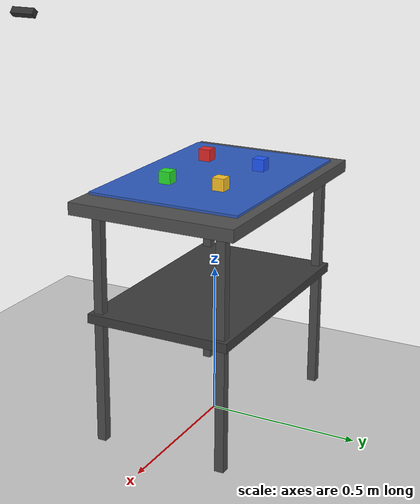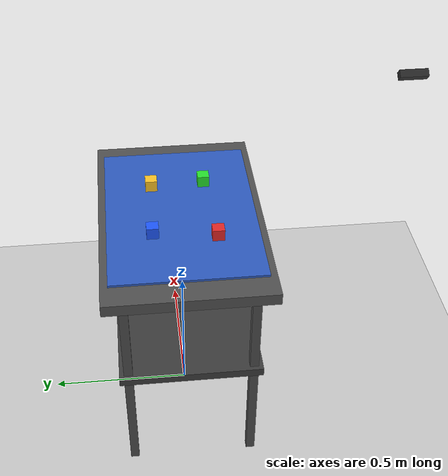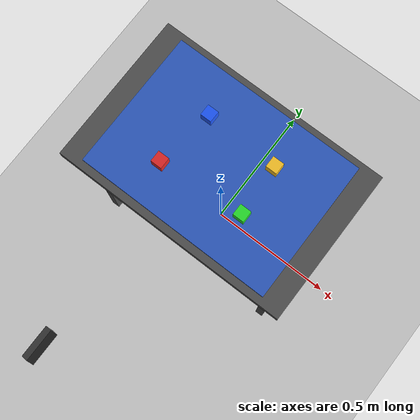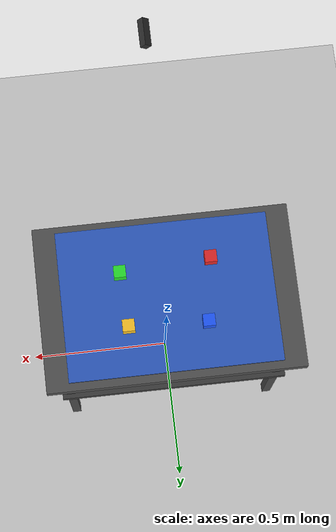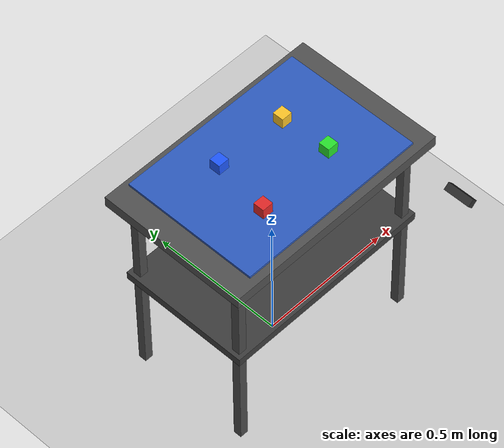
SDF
<?xml version="1.0" ?>
<sdf version="1.6">
  <world name="holoassist_trolley_board">
    <gravity>0 0 -9.81</gravity>

    <include>
      <uri>model://sun</uri>
    </include>

    <include>
      <uri>model://ground_plane</uri>
    </include>

    <model name="trolley">
      <static>true</static>
      <pose>0 0 0 0 0 0</pose>

      <link name="frame">
        <collision name="top_collision">
          <pose>0 0 0.78 0 0 0</pose>
          <geometry>
            <box>
              <size>0.85 0.55 0.04</size>
            </box>
          </geometry>
        </collision>
        <visual name="top_visual">
          <pose>0 0 0.78 0 0 0</pose>
          <geometry>
            <box>
              <size>0.85 0.55 0.04</size>
            </box>
          </geometry>
          <material>
            <ambient>0.22 0.22 0.22 1</ambient>
            <diffuse>0.32 0.32 0.32 1</diffuse>
          </material>
        </visual>

        <collision name="shelf_collision">
          <pose>0 0 0.42 0 0 0</pose>
          <geometry>
            <box>
              <size>0.78 0.48 0.03</size>
            </box>
          </geometry>
        </collision>
        <visual name="shelf_visual">
          <pose>0 0 0.42 0 0 0</pose>
          <geometry>
            <box>
              <size>0.78 0.48 0.03</size>
            </box>
          </geometry>
          <material>
            <ambient>0.16 0.16 0.16 1</ambient>
            <diffuse>0.24 0.24 0.24 1</diffuse>
          </material>
        </visual>

        <collision name="leg_fl_collision">
          <pose>0.36 0.21 0.39 0 0 0</pose>
          <geometry><box><size>0.03 0.03 0.78</size></box></geometry>
        </collision>
        <collision name="leg_fr_collision">
          <pose>0.36 -0.21 0.39 0 0 0</pose>
          <geometry><box><size>0.03 0.03 0.78</size></box></geometry>
        </collision>
        <collision name="leg_rl_collision">
          <pose>-0.36 0.21 0.39 0 0 0</pose>
          <geometry><box><size>0.03 0.03 0.78</size></box></geometry>
        </collision>
        <collision name="leg_rr_collision">
          <pose>-0.36 -0.21 0.39 0 0 0</pose>
          <geometry><box><size>0.03 0.03 0.78</size></box></geometry>
        </collision>

        <visual name="leg_fl_visual">
          <pose>0.36 0.21 0.39 0 0 0</pose>
          <geometry><box><size>0.03 0.03 0.78</size></box></geometry>
          <material><ambient>0.18 0.18 0.18 1</ambient><diffuse>0.3 0.3 0.3 1</diffuse></material>
        </visual>
        <visual name="leg_fr_visual">
          <pose>0.36 -0.21 0.39 0 0 0</pose>
          <geometry><box><size>0.03 0.03 0.78</size></box></geometry>
          <material><ambient>0.18 0.18 0.18 1</ambient><diffuse>0.3 0.3 0.3 1</diffuse></material>
        </visual>
        <visual name="leg_rl_visual">
          <pose>-0.36 0.21 0.39 0 0 0</pose>
          <geometry><box><size>0.03 0.03 0.78</size></box></geometry>
          <material><ambient>0.18 0.18 0.18 1</ambient><diffuse>0.3 0.3 0.3 1</diffuse></material>
        </visual>
        <visual name="leg_rr_visual">
          <pose>-0.36 -0.21 0.39 0 0 0</pose>
          <geometry><box><size>0.03 0.03 0.78</size></box></geometry>
          <material><ambient>0.18 0.18 0.18 1</ambient><diffuse>0.3 0.3 0.3 1</diffuse></material>
        </visual>
      </link>
    </model>

    <model name="workspace_board">
      <static>true</static>
      <pose>0.0 0.0 0.812 0 0 0</pose>
      <link name="board_link">
        <collision name="collision">
          <geometry>
            <box>
              <size>0.700 0.500 0.008</size>
            </box>
          </geometry>
        </collision>
        <visual name="visual">
          <geometry>
            <box>
              <size>0.700 0.500 0.008</size>
            </box>
          </geometry>
          <material>
            <ambient>0.12 0.24 0.54 1</ambient>
            <diffuse>0.18 0.36 0.76 1</diffuse>
          </material>
        </visual>
      </link>
    </model>

    <model name="cube_1">
      <static>true</static>
      <pose>-0.15 -0.11 0.836 0 0 0</pose>
      <link name="cube_link">
        <collision name="collision"><geometry><box><size>0.040 0.040 0.040</size></box></geometry></collision>
        <visual name="visual"><geometry><box><size>0.040 0.040 0.040</size></box></geometry><material><ambient>0.85 0.10 0.10 1</ambient><diffuse>0.90 0.16 0.16 1</diffuse></material></visual>
      </link>
    </model>

    <model name="cube_2">
      <static>true</static>
      <pose>0.15 -0.09 0.836 0 0 0</pose>
      <link name="cube_link">
        <collision name="collision"><geometry><box><size>0.040 0.040 0.040</size></box></geometry></collision>
        <visual name="visual"><geometry><box><size>0.040 0.040 0.040</size></box></geometry><material><ambient>0.10 0.80 0.12 1</ambient><diffuse>0.16 0.90 0.18 1</diffuse></material></visual>
      </link>
    </model>

    <model name="cube_3">
      <static>true</static>
      <pose>-0.12 0.10 0.836 0 0 0</pose>
      <link name="cube_link">
        <collision name="collision"><geometry><box><size>0.040 0.040 0.040</size></box></geometry></collision>
        <visual name="visual"><geometry><box><size>0.040 0.040 0.040</size></box></geometry><material><ambient>0.08 0.26 0.95 1</ambient><diffuse>0.12 0.35 1.0 1</diffuse></material></visual>
      </link>
    </model>

    <model name="cube_4">
      <static>true</static>
      <pose>0.14 0.09 0.836 0 0 0</pose>
      <link name="cube_link">
        <collision name="collision"><geometry><box><size>0.040 0.040 0.040</size></box></geometry></collision>
        <visual name="visual"><geometry><box><size>0.040 0.040 0.040</size></box></geometry><material><ambient>0.95 0.70 0.08 1</ambient><diffuse>1.0 0.78 0.16 1</diffuse></material></visual>
      </link>
    </model>

    <model name="d435i_sim">
      <static>true</static>
      <pose>0 -0.72 1.28 2.45 0 1.5708</pose>
      <link name="camera_link">
        <inertial>
          <mass>0.1</mass>
          <inertia>
            <ixx>0.0001</ixx>
            <iyy>0.0001</iyy>
            <izz>0.0001</izz>
            <ixy>0.0</ixy>
            <ixz>0.0</ixz>
            <iyz>0.0</iyz>
          </inertia>
        </inertial>

        <visual name="camera_body">
          <geometry>
            <box>
              <size>0.09 0.025 0.025</size>
            </box>
          </geometry>
          <material>
            <ambient>0.10 0.10 0.10 1</ambient>
            <diffuse>0.18 0.18 0.18 1</diffuse>
          </material>
        </visual>

        <sensor name="d435i_rgbd" type="depth">
          <always_on>1</always_on>
          <update_rate>15</update_rate>
          <visualize>false</visualize>
          <camera>
            <horizontal_fov>1.211259</horizontal_fov>
            <image>
              <width>640</width>
              <height>480</height>
              <format>B8G8R8</format>
            </image>
            <depth_camera/>
            <clip>
              <near>0.10</near>
              <far>3.0</far>
            </clip>
            <noise>
              <type>gaussian</type>
              <mean>0.0</mean>
              <stddev>0.004</stddev>
            </noise>
          </camera>
          <plugin name="d435i_rgbd_plugin" filename="libgazebo_ros_camera.so">
            <ros>
              <namespace>/camera</namespace>
              <remapping>camera/image_raw:=camera/color/image_raw</remapping>
              <remapping>camera/camera_info:=camera/color/camera_info</remapping>
              <remapping>camera/depth/image_raw:=camera/depth/image_rect_raw</remapping>
              <remapping>camera/depth/camera_info:=camera/depth/camera_info</remapping>
              <remapping>camera/points:=camera/depth/color/points</remapping>
            </ros>
            <camera_name>camera</camera_name>
            <frame_name>camera_color_optical_frame</frame_name>
            <min_depth>0.10</min_depth>
            <max_depth>3.0</max_depth>
          </plugin>
        </sensor>

        <sensor name="d435i_imu" type="imu">
          <always_on>1</always_on>
          <update_rate>100</update_rate>
          <visualize>false</visualize>
          <imu>
            <noise>
              <type>gaussian</type>
              <rate>
                <mean>0</mean>
                <stddev>0.0002</stddev>
              </rate>
              <accel>
                <mean>0</mean>
                <stddev>0.02</stddev>
              </accel>
            </noise>
          </imu>
          <plugin name="d435i_imu_plugin" filename="libgazebo_ros_imu_sensor.so">
            <ros>
              <namespace>/camera</namespace>
              <remapping>~/out:=camera/imu</remapping>
            </ros>
            <initial_orientation_as_reference>false</initial_orientation_as_reference>
            <frame_name>camera_imu_optical_frame</frame_name>
          </plugin>
        </sensor>
      </link>
    </model>
  </world>
</sdf>
